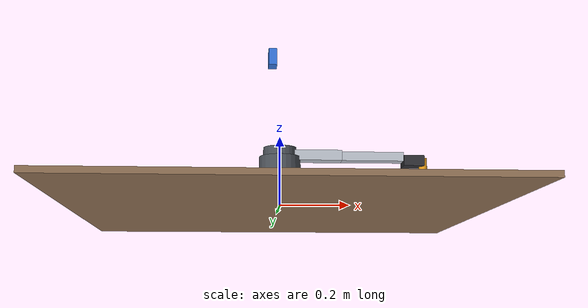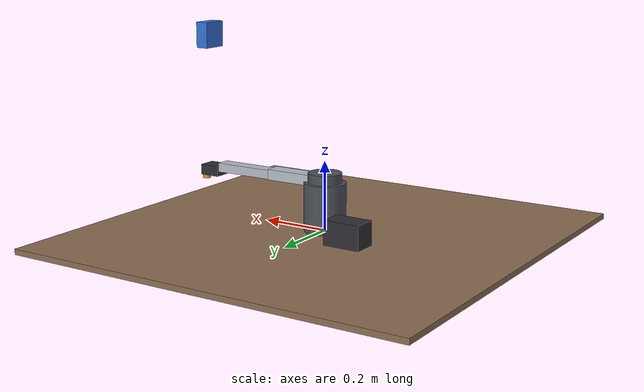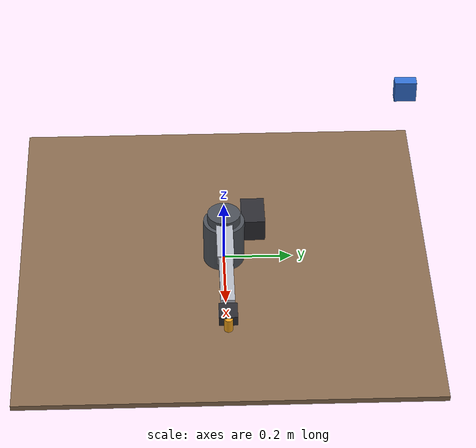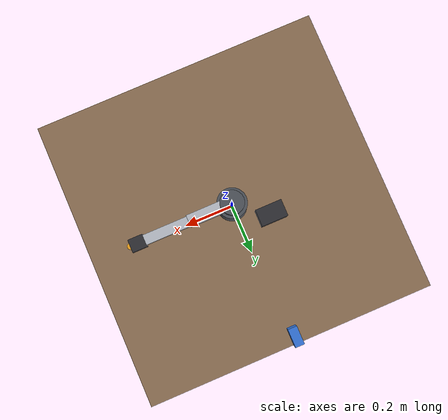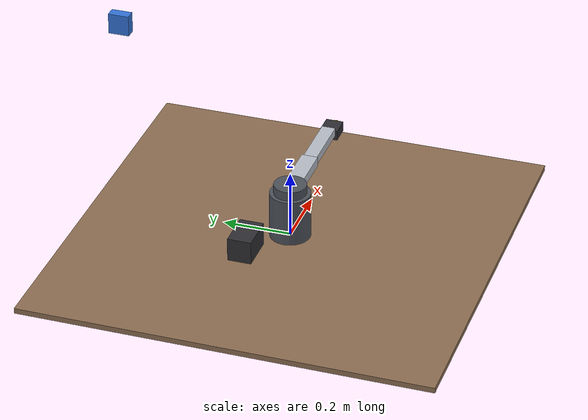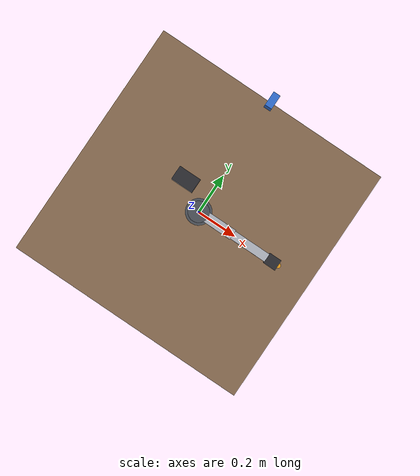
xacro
<?xml version="1.0"?>
<robot xmlns:xacro="http://www.ros.org/wiki/xacro" name="hwb_arm4">

  <xacro:arg name="can_interface" default="can0"/>
  <xacro:arg name="use_ros2_control" default="false"/>

  <!-- ================= 全局参数（与 arm_model.hpp 一一对应） ================= -->
  <xacro:property name="a1"      value="0.180"/>   <!-- 大臂：J1 轴 -> J2 轴 -->
  <xacro:property name="a2"      value="0.180"/>   <!-- 小臂：J2 轴 -> J3 轴 -->
  <xacro:property name="a3"      value="0.060"/>   <!-- 腕部：J3 轴 -> 吸盘中心 -->
  <xacro:property name="d1"      value="0.140"/>   <!-- 基座高度：台面 -> 回转平面 -->
  <xacro:property name="lift_lo" value="-0.135"/>  <!-- 升降下限（到台面上方 5mm） -->
  <xacro:property name="lift_hi" value="0.000"/>   <!-- 升降上限（= 回转平面，机械死挡） -->

  <xacro:property name="j1_limit" value="3.14159265"/>
  <xacro:property name="j2_limit" value="2.61799388"/>
  <xacro:property name="j3_limit" value="2.61799388"/>

  <!-- 相机：固定在工作台上方俯视（eye-to-hand） -->
  <xacro:property name="cam_x"   value="0.0"/>
  <xacro:property name="cam_y"   value="0.500"/>   <!-- 光轴在工作区中心上方 -->
  <xacro:property name="cam_z"   value="0.600"/>   <!-- 台面上方 600mm -->

  <!-- ================= 惯性宏 ================= -->
  <xacro:macro name="box_inertia" params="m x y z">
    <inertial>
      <mass value="${m}"/>
      <inertia ixx="${m*(y*y+z*z)/12.0}" ixy="0"
               ixz="0" iyy="${m*(x*x+z*z)/12.0}"
               iyz="0" izz="${m*(x*x+y*y)/12.0}"/>
    </inertial>
  </xacro:macro>

  <xacro:macro name="cyl_inertia" params="m r h">
    <inertial>
      <mass value="${m}"/>
      <inertia ixx="${m*(3.0*r*r+h*h)/12.0}" ixy="0" ixz="0"
               iyy="${m*(3.0*r*r+h*h)/12.0}" iyz="0"
               izz="${m*r*r/2.0}"/>
    </inertial>
  </xacro:macro>

  <!-- ================= 材质 ================= -->
  <material name="base_grey">  <color rgba="0.30 0.32 0.35 1.0"/></material>
  <material name="arm_silver"> <color rgba="0.72 0.74 0.78 1.0"/></material>
  <material name="wrist_dark"> <color rgba="0.18 0.18 0.20 1.0"/></material>
  <material name="cup_amber">  <color rgba="0.92 0.62 0.10 1.0"/></material>
  <material name="cam_blue">   <color rgba="0.20 0.45 0.85 1.0"/></material>
  <material name="table_wood"> <color rgba="0.55 0.43 0.32 1.0"/></material>

  <!-- ================= 工作台（纯视觉参考，不参与运动学） ================= -->
  <link name="table_link">
    <visual>
      <origin xyz="0 0 -0.008" rpy="0 0 0"/>
      <geometry><box size="1.20 1.20 0.016"/></geometry>
      <material name="table_wood"/>
    </visual>
  </link>
  <joint name="table_joint" type="fixed">
    <parent link="base_link"/>
    <child  link="table_link"/>
    <origin xyz="0 0 0" rpy="0 0 0"/>
  </joint>

  <!-- ================= base_link：基座固定部分 ================= -->
  <link name="base_link">
    <visual>
      <origin xyz="0 0 ${d1/2.0}" rpy="0 0 0"/>
      <geometry><cylinder radius="0.060" length="${d1}"/></geometry>
      <material name="base_grey"/>
    </visual>
    <collision>
      <origin xyz="0 0 ${d1/2.0}" rpy="0 0 0"/>
      <geometry><cylinder radius="0.060" length="${d1}"/></geometry>
    </collision>
    <xacro:cyl_inertia m="3.20" r="0.060" h="${d1}"/>
  </link>

  <link name="link_1">
    <visual>
      <origin xyz="0 0 0" rpy="0 0 0"/>
      <geometry><cylinder radius="0.048" length="0.055"/></geometry>
      <material name="base_grey"/>
    </visual>
    <!-- 大臂：从 J1 轴伸到 J2 轴 -->
    <visual>
      <origin xyz="${a1/2.0} 0 0.004" rpy="0 0 0"/>
      <geometry><box size="${a1} 0.048 0.030"/></geometry>
      <material name="arm_silver"/>
    </visual>
    <collision>
      <origin xyz="${a1/2.0} 0 0.004" rpy="0 0 0"/>
      <geometry><box size="${a1} 0.048 0.030"/></geometry>
    </collision>
    <xacro:box_inertia m="1.45" x="${a1}" y="0.048" z="0.030"/>
  </link>

  <joint name="joint_1" type="revolute">
    <parent link="base_link"/>
    <child  link="link_1"/>
    <origin xyz="0 0 ${d1}" rpy="0 0 0"/>
    <axis xyz="0 0 1"/>
    <dynamics damping="0.06" friction="0.10"/>
    <!-- 谐波减速器 1:50 + 电机峰值力矩，折算到输出轴约 12 N·m -->
    <limit effort="12.0" velocity="6.0"
           lower="${-j1_limit}" upper="${j1_limit}"/>
  </joint>

  <!-- ================= joint_2：大臂回转（承担 a1 之后的 a2 段） ================= -->
  <link name="link_2">
    <visual>
      <origin xyz="${a2/2.0} 0 0.002" rpy="0 0 0"/>
      <geometry><box size="${a2} 0.040 0.026"/></geometry>
      <material name="arm_silver"/>
    </visual>
    <collision>
      <origin xyz="${a2/2.0} 0 0.002" rpy="0 0 0"/>
      <geometry><box size="${a2} 0.040 0.026"/></geometry>
    </collision>
    <xacro:box_inertia m="0.95" x="${a2}" y="0.040" z="0.026"/>
  </link>

  <joint name="joint_2" type="revolute">
    <parent link="link_1"/>
    <child  link="link_2"/>
    <origin xyz="${a1} 0 0" rpy="0 0 0"/>
    <axis xyz="0 0 1"/>
    <dynamics damping="0.05" friction="0.08"/>
    <limit effort="9.0" velocity="6.0"
           lower="${-j2_limit}" upper="${j2_limit}"/>
  </joint>

  <!-- ================= joint_3：小臂回转 ================= -->
  <link name="link_3">
    <visual>
      <origin xyz="${a3/2.0} 0 -0.010" rpy="0 0 0"/>
      <geometry><box size="${a3} 0.052 0.030"/></geometry>
      <material name="wrist_dark"/>
    </visual>
    <collision>
      <origin xyz="${a3/2.0} 0 -0.010" rpy="0 0 0"/>
      <geometry><box size="${a3} 0.052 0.030"/></geometry>
    </collision>
    <xacro:box_inertia m="0.35" x="${a3}" y="0.052" z="0.030"/>
  </link>

  <joint name="joint_3" type="revolute">
    <parent link="link_2"/>
    <child  link="link_3"/>
    <origin xyz="${a2} 0 0" rpy="0 0 0"/>
    <axis xyz="0 0 1"/>
    <dynamics damping="0.04" friction="0.06"/>
    <limit effort="5.0" velocity="8.0"
           lower="${-j3_limit}" upper="${j3_limit}"/>
  </joint>

  <link name="tool_link">
    <visual>
      <origin xyz="0 0 -0.020" rpy="0 0 0"/>
      <geometry><cylinder radius="0.012" length="0.040"/></geometry>
      <material name="cup_amber"/>
    </visual>
    <collision>
      <origin xyz="0 0 -0.020" rpy="0 0 0"/>
      <geometry><cylinder radius="0.012" length="0.040"/></geometry>
    </collision>
    <xacro:cyl_inertia m="0.09" r="0.012" h="0.040"/>
  </link>

  <joint name="joint_4" type="prismatic">
    <parent link="link_3"/>
    <child  link="tool_link"/>
    <origin xyz="${a3} 0 0" rpy="0 0 0"/>
    <axis xyz="0 0 1"/>
    <dynamics damping="0.30" friction="0.40"/>
    <!-- 行程 135mm（0 = 回转平面，-0.135 = 台面上方 5mm） -->
    <limit effort="120.0" velocity="0.50"
           lower="${lift_lo}" upper="${lift_hi}"/>
  </joint>

  <!-- tool0：吸盘中心。与 arm_control 的运动学末端点重合，
       也是 /arm/tool_pose 与 /arm/target_pose 表达的那个点。 -->
  <link name="tool0"/>
  <joint name="tool0_joint" type="fixed">
    <parent link="tool_link"/>
    <child  link="tool0"/>
    <origin xyz="0 0 -0.040" rpy="0 0 0"/>
  </joint>

  <!-- ================= 气泵（固定在基座旁，不参与运动学） ================= -->
  <link name="pump_link">
    <visual>
      <origin xyz="0 0 0.035" rpy="0 0 0"/>
      <geometry><box size="0.110 0.070 0.070"/></geometry>
      <material name="wrist_dark"/>
    </visual>
    <xacro:box_inertia m="0.62" x="0.110" y="0.070" z="0.070"/>
  </link>
  <joint name="pump_joint" type="fixed">
    <parent link="base_link"/>
    <child  link="pump_link"/>
    <origin xyz="-0.130 0.090 0" rpy="0 0 0"/>
  </joint>

  <link name="camera_link">
    <visual>
      <origin xyz="0 0 0" rpy="0 0 0"/>
      <geometry><box size="0.030 0.060 0.060"/></geometry>
      <material name="cam_blue"/>
    </visual>
    <xacro:box_inertia m="0.075" x="0.030" y="0.060" z="0.060"/>
  </link>

  <joint name="camera_joint" type="fixed">
    <parent link="base_link"/>
    <child  link="camera_link"/>
    <origin xyz="${cam_x} ${cam_y} ${cam_z}" rpy="0 0 0"/>
  </joint>

  <link name="camera_optical_frame"/>
  <joint name="camera_optical_joint" type="fixed">
    <parent link="camera_link"/>
    <child  link="camera_optical_frame"/>
    <origin xyz="0 0 0" rpy="3.14159265 0 0"/>
  </joint>

  <!-- ================= ros2_control 硬件段 ================= -->
  <xacro:if value="$(arg use_ros2_control)">
    <ros2_control name="HwbSystem" type="system">
      <hardware>
        <plugin>hw_ros2_control/HwbSystem</plugin>
        <param name="can_interface">$(arg can_interface)</param>
        <param name="invert_direction">false</param>
        <param name="send_enable_on_activate">true</param>
        <!-- 三个回转轴由谐波减速器 1:50 直连，驱动板报的就是输出轴角度，
             所以减速比填 1.0；J4 是丝杠轴，驱动板报丝杠转角，
             米/弧度的换算在 arm_control 里做，这里同样填 1.0 -->
        <param name="gear_ratio_joint_1">1.0</param>
        <param name="gear_ratio_joint_2">1.0</param>
        <param name="gear_ratio_joint_3">1.0</param>
        <param name="gear_ratio_joint_4">1.0</param>
        <!-- 电流上限与 arm_control 的 current.nominal 对应 -->
        <param name="current_limit_joint_1">4.0</param>
        <param name="current_limit_joint_2">3.5</param>
        <param name="current_limit_joint_3">2.5</param>
        <param name="current_limit_joint_4">1.5</param>
      </hardware>

      <xacro:macro name="arm_ifaces" params="idx">
        <joint name="joint_${idx}">
          <command_interface name="position"/>
          <command_interface name="velocity"/>
          <command_interface name="effort"/>
          <state_interface name="position"/>
          <state_interface name="velocity"/>
          <state_interface name="effort"/>
          <state_interface name="temperature"/>
        </joint>
      </xacro:macro>

      <xacro:arm_ifaces idx="1"/>
      <xacro:arm_ifaces idx="2"/>
      <xacro:arm_ifaces idx="3"/>
      <xacro:arm_ifaces idx="4"/>
    </ros2_control>
  </xacro:if>

</robot>
